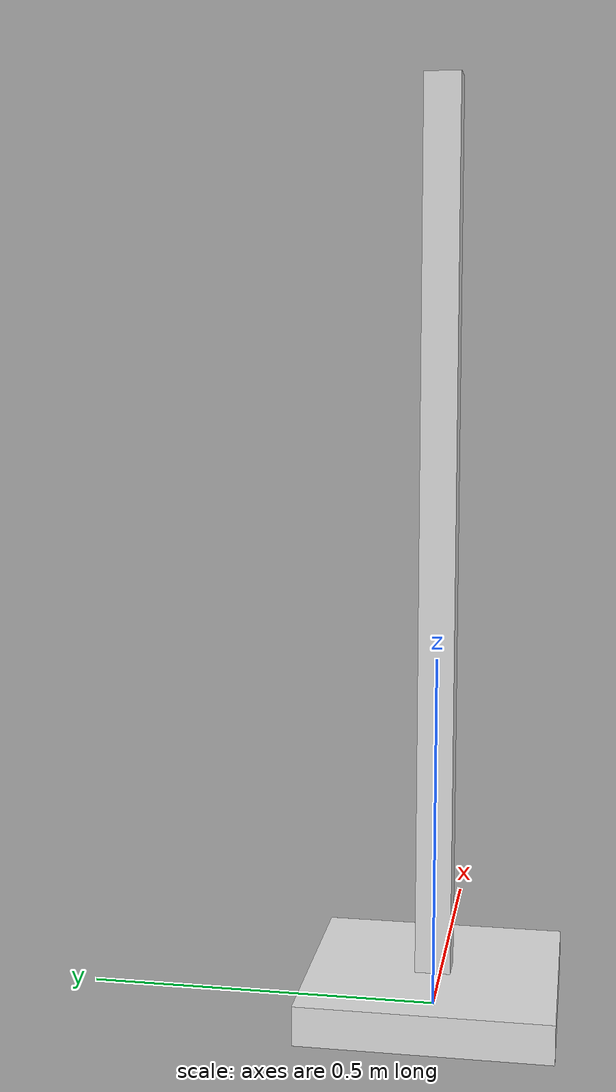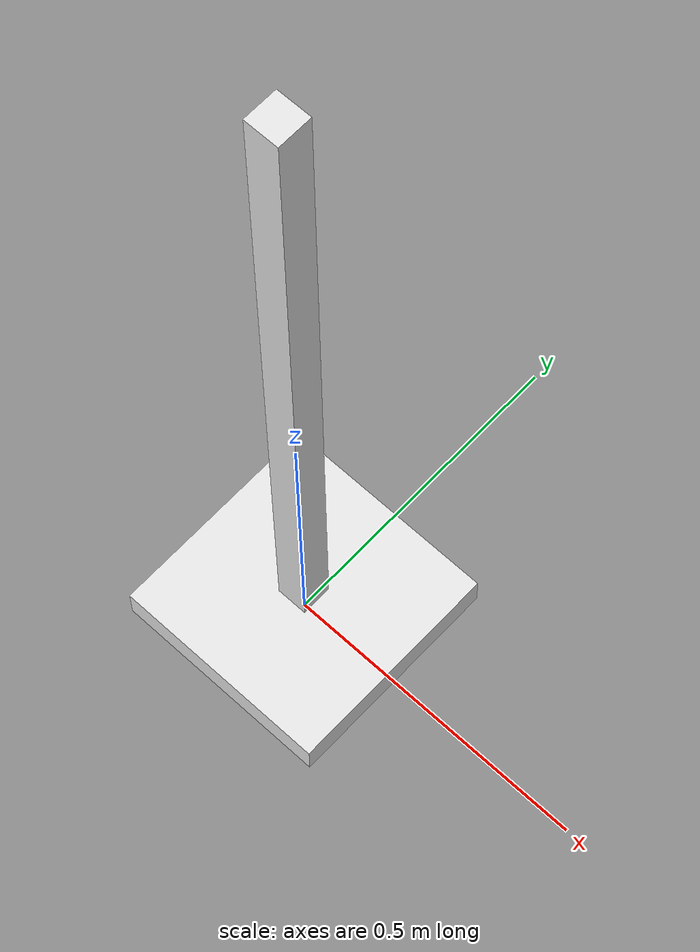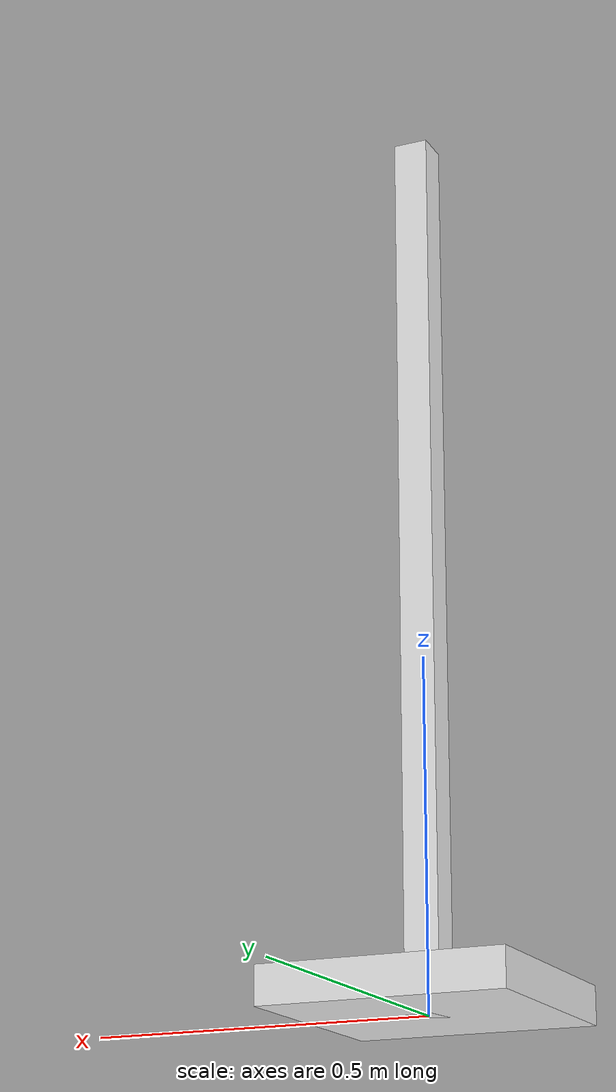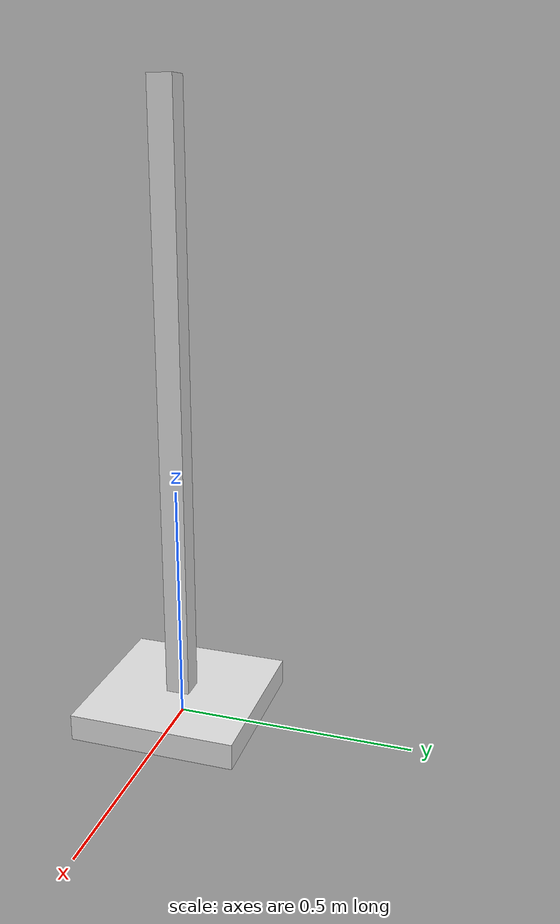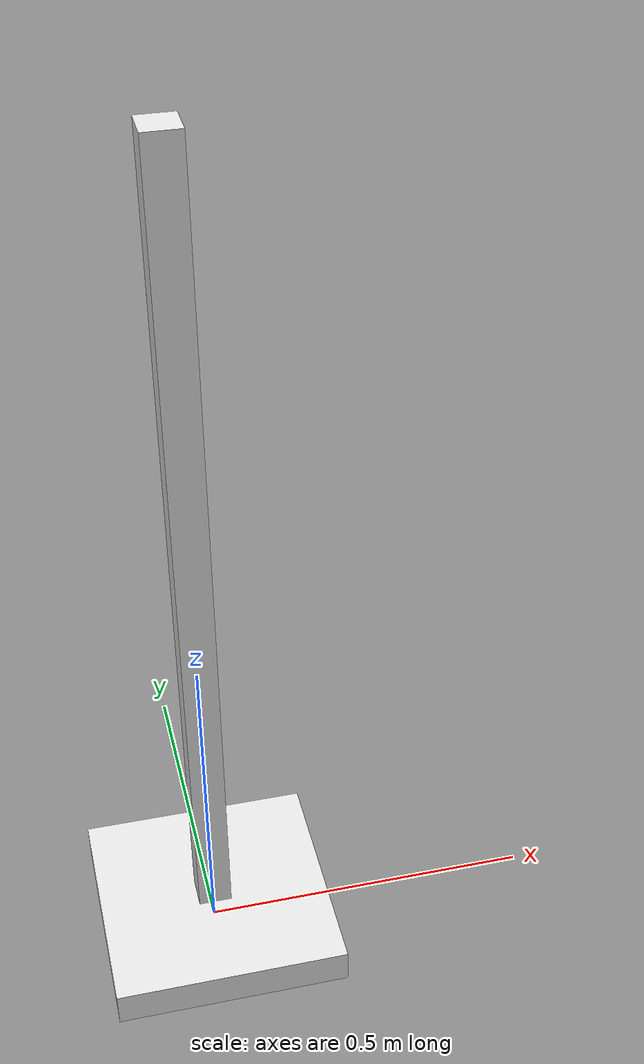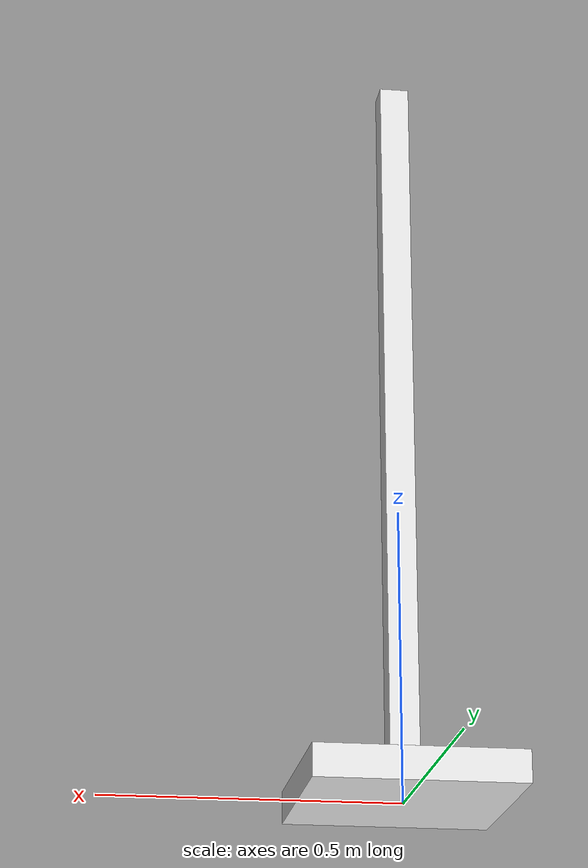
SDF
<?xml version="1.0"?>
<sdf version="1.6">
  <model name="rwc2015/old/coathanger">
    <link name="1_link">
      <collision name="1_col">
        <geometry>
          <box>
            <size>0.35 0.35 0.055</size>
          </box>
        </geometry>
      </collision>
      <visual name="1_vis">
        <geometry>
          <box>
            <size>0.35 0.35 0.055</size>
          </box>
        </geometry>
        <material>
          <ambient>0.9 0.9 0.9 1</ambient>
        </material>
      </visual>
      <pose>0.0 0.0 0.0275 0 0 0</pose>
    </link>
    <link name="2_link">
      <collision name="2_col">
        <geometry>
          <box>
            <size>0.05 0.05 1.29</size>
          </box>
        </geometry>
      </collision>
      <visual name="2_vis">
        <geometry>
          <box>
            <size>0.05 0.05 1.29</size>
          </box>
        </geometry>
        <material>
          <ambient>0.9 0.9 0.9 1</ambient>
        </material>
      </visual>
      <pose>0.0 0.0 0.645 0 0 0</pose>
    </link>
    <static>true</static>
  </model>
</sdf>
